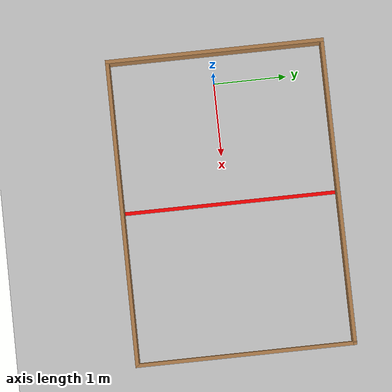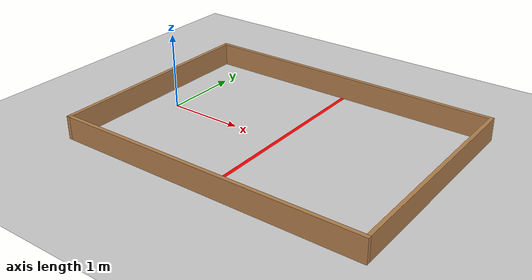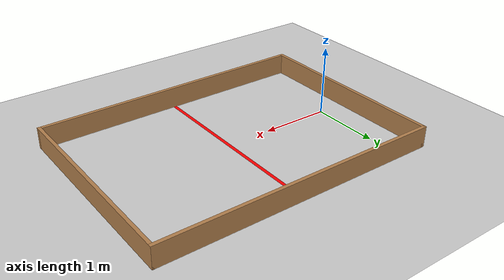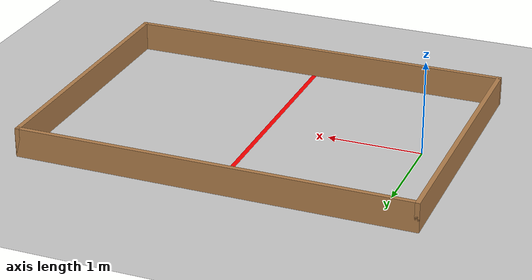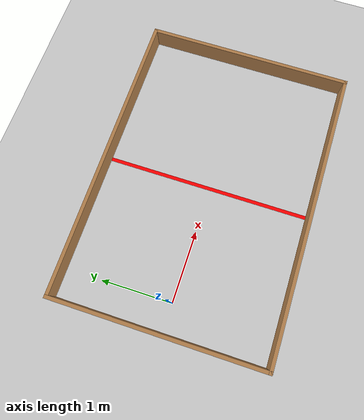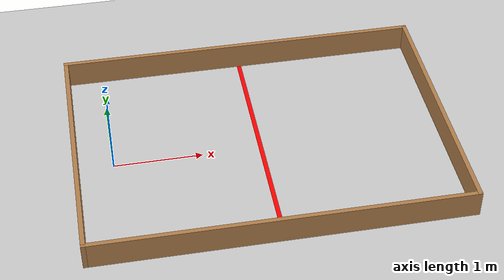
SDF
<sdf version="1.6">
 <world name="default">
  <light name="sun" type="directional">
   <pose>0 0 10 0 -0 0</pose>
   <diffuse>0.8 0.8 0.8 1</diffuse>
   <specular>0.2 0.2 0.2 1</specular>
   <attenuation>
    <range>1000</range>
    <constant>0.9</constant>
    <linear>0.01</linear>
    <quadratic>0.001</quadratic>
   </attenuation>
   <direction>-0.5 0.1 -0.9</direction>
   <spot><inner_angle>0</inner_angle><outer_angle>0</outer_angle><falloff>0</falloff></spot>
  </light>
  <model name="ground_plane">
   <static>1</static>
   <link name="link">
    <collision name="collision">
     <geometry><plane><normal>0 0 1</normal><size>100 100</size></plane></geometry>
     <surface>
      <contact><collide_bitmask>65535</collide_bitmask></contact>
      <friction><ode><mu>100</mu><mu2>50</mu2></ode></friction>
     </surface>
    </collision>
    <visual name="visual">
     <cast_shadows>0</cast_shadows>
     <geometry><plane><normal>0 0 1</normal><size>100 100</size></plane></geometry>
     <material>
      <script><uri>file://media/materials/scripts/gazebo.material</uri><name>Gazebo/Grey</name></script>
     </material>
    </visual>
   </link>
  </model>
  <gravity>0 0 -9.8</gravity>
  <magnetic_field>6e-06 2.3e-05 -4.2e-05</magnetic_field>
  <atmosphere type="adiabatic"/>
  <physics type="ode">
   <max_step_size>0.001</max_step_size>
   <real_time_factor>1</real_time_factor>
   <real_time_update_rate>1000</real_time_update_rate>
  </physics>
  <scene><ambient>0.4 0.4 0.4 1</ambient><background>0.7 0.7 0.7 1</background><shadows>1</shadows></scene>
  <spherical_coordinates>
   <surface_model>EARTH_WGS84</surface_model>
   <latitude_deg>0</latitude_deg>
   <longitude_deg>0</longitude_deg>
   <elevation>0</elevation>
   <heading_deg>0</heading_deg>
  </spherical_coordinates>
  <model name="structure_line">
   <pose>2.43687 0.73515 0 0 -0 0</pose>
   <link name="Wall_12">
    <collision name="Wall_12_Collision">
     <geometry><box><size>4.2 0.05 0.31</size></box></geometry>
     <pose>0 0 0.155 0 -0 0</pose>
    </collision>
    <visual name="Wall_12_Visual">
     <pose>0 0 0.155 0 -0 0</pose>
     <geometry><box><size>4.2 0.05 0.31</size></box></geometry>
     <material>
      <script><uri>file://media/materials/scripts/gazebo.material</uri><name>Gazebo/Wood</name></script>
      <ambient>1 1 1 1</ambient>
     </material>
     <meta><layer>0</layer></meta>
    </visual>
    <pose>-0.7745 0.7925 0 0 -0 0</pose>
   </link>
   <link name="Wall_13">
    <collision name="Wall_13_Collision">
     <geometry><box><size>3 0.05 0.31</size></box></geometry>
     <pose>0 0 0.155 0 -0 0</pose>
    </collision>
    <visual name="Wall_13_Visual">
     <pose>0 0 0.155 0 -0 0</pose>
     <geometry><box><size>3 0.05 0.31</size></box></geometry>
     <material>
      <script><uri>file://media/materials/scripts/gazebo.material</uri><name>Gazebo/Wood</name></script>
      <ambient>1 1 1 1</ambient>
     </material>
     <meta><layer>0</layer></meta>
    </visual>
    <pose>1.3005 -0.6825 0 0 -0 -1.5708</pose>
   </link>
   <link name="Wall_14">
    <collision name="Wall_14_Collision">
     <geometry><box><size>4.2 0.05 0.31</size></box></geometry>
     <pose>0 0 0.155 0 -0 0</pose>
    </collision>
    <visual name="Wall_14_Visual">
     <pose>0 0 0.155 0 -0 0</pose>
     <geometry><box><size>4.2 0.05 0.31</size></box></geometry>
     <material>
      <script><uri>file://media/materials/scripts/gazebo.material</uri><name>Gazebo/Wood</name></script>
      <ambient>1 1 1 1</ambient>
     </material>
     <meta><layer>0</layer></meta>
    </visual>
    <pose>-0.7745 -2.1575 0 0 -0 3.14159</pose>
   </link>
   <link name="Wall_15">
    <collision name="Wall_15_Collision">
     <geometry><box><size>3 0.05 0.31</size></box></geometry>
     <pose>0 0 0.155 0 -0 0</pose>
    </collision>
    <visual name="Wall_15_Visual">
     <pose>0 0 0.155 0 -0 0</pose>
     <geometry><box><size>3 0.05 0.31</size></box></geometry>
     <material>
      <script><uri>file://media/materials/scripts/gazebo.material</uri><name>Gazebo/Wood</name></script>
      <ambient>1 1 1 1</ambient>
     </material>
     <meta><layer>0</layer></meta>
    </visual>
    <pose>-2.8495 -0.6825 0 0 -0 1.5708</pose>
   </link>
   <link name="Wall_17">
    <collision name="Wall_17_Collision"><geometry><box><size>3 0.05 0</size></box></geometry></collision>
    <visual name="Wall_17_Visual">
     <geometry><box><size>3 0.05 0</size></box></geometry>
     <material>
      <script><uri>file://media/materials/scripts/gazebo.material</uri><name>Gazebo/Grey</name></script>
      <ambient>1 0 0 0</ambient>
     </material>
     <meta><layer>0</layer></meta>
    </visual>
    <pose>-0.7745 -0.6825 0 0 -0 -1.5708</pose>
   </link>
   <static>1</static>
  </model>
  <plugin filename="libcollision_map_creator.so" name="collision_map_creator"/>
 </world>
</sdf>
